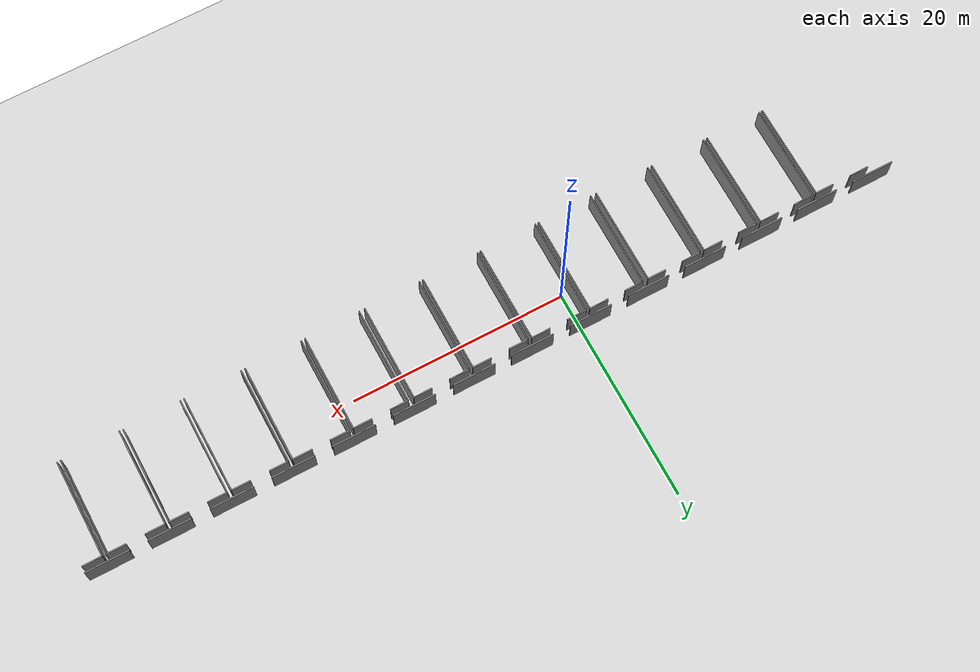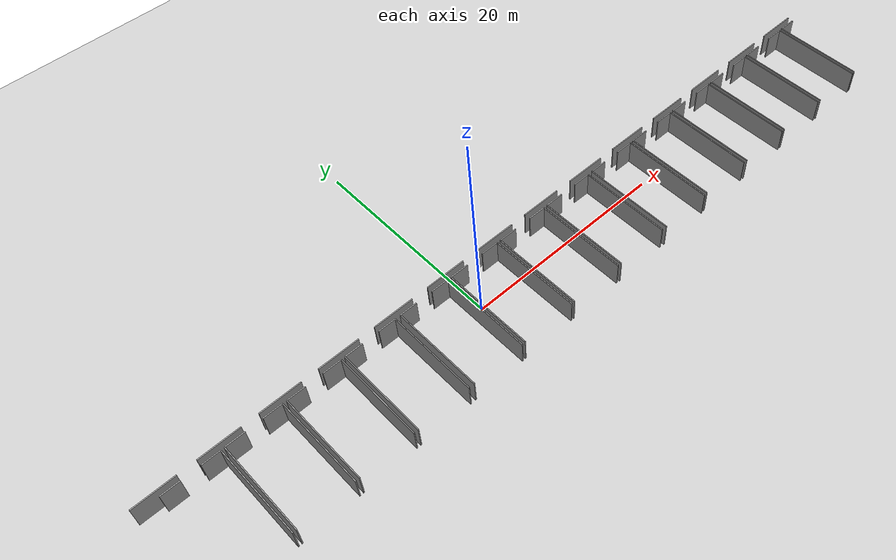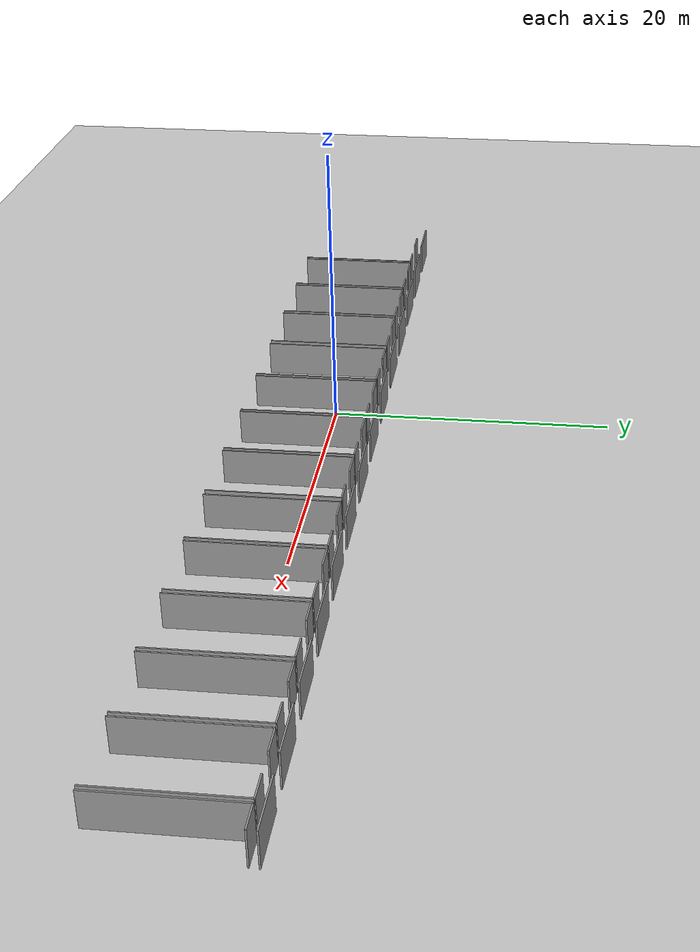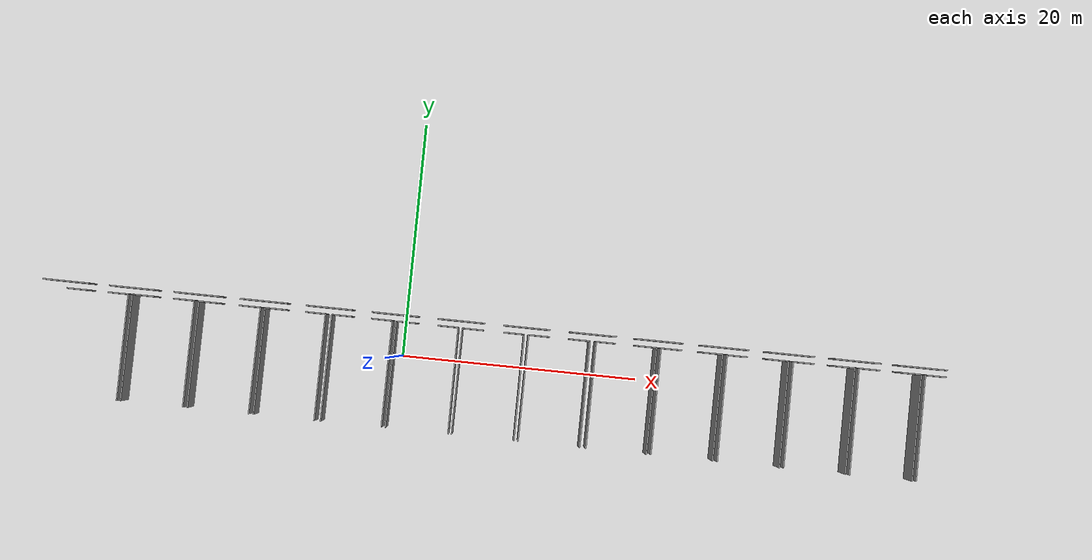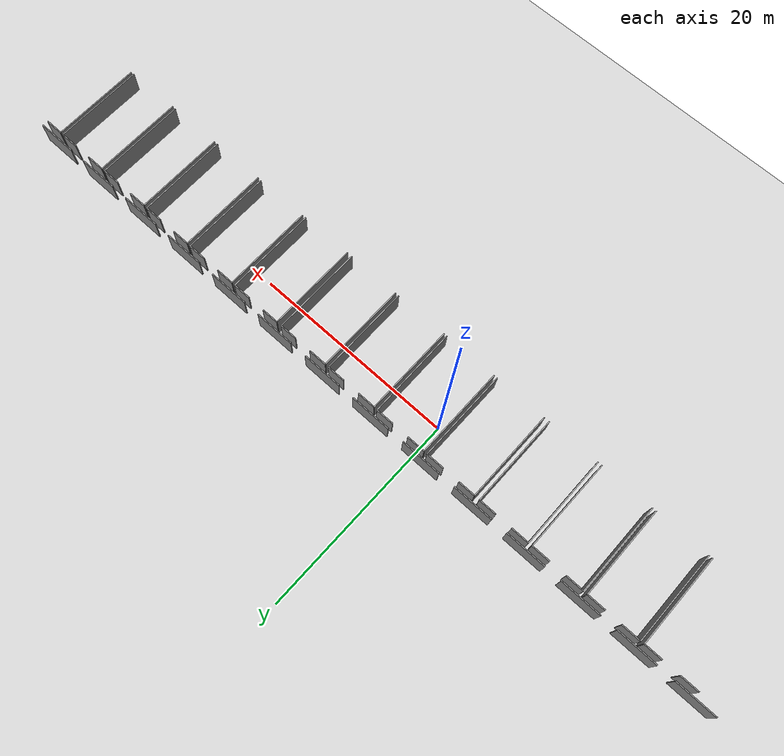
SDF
<sdf version="1.6">
 <world name="default">
  <model name="ground_plane">
   <static>1</static>
   <link name="link">
    <collision name="collision">
     <geometry><plane><normal>0 0 1</normal><size>100 100</size></plane></geometry>
     <surface><friction><ode><mu>100</mu><mu2>50</mu2></ode></friction></surface>
    </collision>
    <visual name="visual">
     <cast_shadows>0</cast_shadows>
     <geometry><plane><normal>0 0 1</normal><size>100 100</size></plane></geometry>
     <material>
      <script><uri>file://media/materials/scripts/gazebo.material</uri><name>Gazebo/Grey</name></script>
     </material>
    </visual>
   </link>
  </model>
  <model name="50015850_PLAN5">
   <static>1</static>
   <link name="Wall_6">
    <collision name="Wall_6_Collision">
     <geometry><box><size>3.97766639173 0.1 2.5</size></box></geometry>
     <pose>1.98883319586 0 1.25 0 0 0</pose>
    </collision>
    <visual name="Wall_6_Visual">
     <pose>1.98883319586 0 1.25 0 0 0</pose>
     <geometry><box><size>3.97766639173 0.1 2.5</size></box></geometry>
     <material>
      <script><uri>file://media/materials/scripts/gazebo.material</uri><name>Gazebo/Grey</name></script>
      <ambient>1 1 1 1</ambient>
     </material>
    </visual>
    <pose>132.636254045 -2.89976524332 0 0 0 3.14159265359</pose>
   </link>
   <link name="Wall_7">
    <collision name="Wall_7_Collision">
     <geometry><box><size>3.93249159317 0.1 2.5</size></box></geometry>
     <pose>1.96624579659 0 1.25 0 0 0</pose>
    </collision>
    <visual name="Wall_7_Visual">
     <pose>1.96624579659 0 1.25 0 0 0</pose>
     <geometry><box><size>3.93249159317 0.1 2.5</size></box></geometry>
     <material>
      <script><uri>file://media/materials/scripts/gazebo.material</uri><name>Gazebo/Grey</name></script>
      <ambient>1 1 1 1</ambient>
     </material>
    </visual>
    <pose>127.035340397 -2.89976524332 0 0 0 3.14159265359</pose>
   </link>
   <link name="Wall_8">
    <collision name="Wall_8_Collision">
     <geometry><box><size>3.96142376753 0.1 2.5</size></box></geometry>
     <pose>1.98071188376 0 1.25 0 0 0</pose>
    </collision>
    <visual name="Wall_8_Visual">
     <pose>1.98071188376 0 1.25 0 0 0</pose>
     <geometry><box><size>3.96142376753 0.1 2.5</size></box></geometry>
     <material>
      <script><uri>file://media/materials/scripts/gazebo.material</uri><name>Gazebo/Grey</name></script>
      <ambient>1 1 1 1</ambient>
     </material>
    </visual>
    <pose>121.448639046 -2.89976524332 0 0 0 3.14159265359</pose>
   </link>
   <link name="Wall_9">
    <collision name="Wall_9_Collision">
     <geometry><box><size>3.96446925956 0.1 2.5</size></box></geometry>
     <pose>1.98223462978 0 1.25 0 0 0</pose>
    </collision>
    <visual name="Wall_9_Visual">
     <pose>1.98223462978 0 1.25 0 0 0</pose>
     <geometry><box><size>3.96446925956 0.1 2.5</size></box></geometry>
     <material>
      <script><uri>file://media/materials/scripts/gazebo.material</uri><name>Gazebo/Grey</name></script>
      <ambient>1 1 1 1</ambient>
     </material>
    </visual>
    <pose>115.868790051 -2.89976524332 0 0 0 3.14159265359</pose>
   </link>
   <link name="Wall_10">
    <collision name="Wall_10_Collision">
     <geometry><box><size>3.97157540765 0.1 2.5</size></box></geometry>
     <pose>1.98578770383 0 1.25 0 0 0</pose>
    </collision>
    <visual name="Wall_10_Visual">
     <pose>1.98578770383 0 1.25 0 0 0</pose>
     <geometry><box><size>3.97157540765 0.1 2.5</size></box></geometry>
     <material>
      <script><uri>file://media/materials/scripts/gazebo.material</uri><name>Gazebo/Grey</name></script>
      <ambient>1 1 1 1</ambient>
     </material>
    </visual>
    <pose>110.282850073 -2.89976524332 0 0 0 3.14159265359</pose>
   </link>
   <link name="Wall_11">
    <collision name="Wall_11_Collision">
     <geometry><box><size>3.96142376753 0.1 2.5</size></box></geometry>
     <pose>1.98071188376 0 1.25 0 0 0</pose>
    </collision>
    <visual name="Wall_11_Visual">
     <pose>1.98071188376 0 1.25 0 0 0</pose>
     <geometry><box><size>3.96142376753 0.1 2.5</size></box></geometry>
     <material>
      <script><uri>file://media/materials/scripts/gazebo.material</uri><name>Gazebo/Grey</name></script>
      <ambient>1 1 1 1</ambient>
     </material>
    </visual>
    <pose>104.674576486 -2.89976524332 0 0 0 3.14159265359</pose>
   </link>
   <link name="Wall_12">
    <collision name="Wall_12_Collision">
     <geometry><box><size>3.95837827549 0.1 2.5</size></box></geometry>
     <pose>1.97918913775 0 1.25 0 0 0</pose>
    </collision>
    <visual name="Wall_12_Visual">
     <pose>1.97918913775 0 1.25 0 0 0</pose>
     <geometry><box><size>3.95837827549 0.1 2.5</size></box></geometry>
     <material>
      <script><uri>file://media/materials/scripts/gazebo.material</uri><name>Gazebo/Grey</name></script>
      <ambient>1 1 1 1</ambient>
     </material>
    </visual>
    <pose>99.0444768733 -2.89976524332 0 0 0 3.14159265359</pose>
   </link>
   <link name="Wall_13">
    <collision name="Wall_13_Collision">
     <geometry><box><size>4.01573504219 0.1 2.5</size></box></geometry>
     <pose>2.0078675211 0 1.25 0 0 0</pose>
    </collision>
    <visual name="Wall_13_Visual">
     <pose>2.0078675211 0 1.25 0 0 0</pose>
     <geometry><box><size>4.01573504219 0.1 2.5</size></box></geometry>
     <material>
      <script><uri>file://media/materials/scripts/gazebo.material</uri><name>Gazebo/Grey</name></script>
      <ambient>1 1 1 1</ambient>
     </material>
    </visual>
    <pose>93.5151322886 -2.89976524332 0 0 0 3.14159265359</pose>
   </link>
   <link name="Wall_14">
    <collision name="Wall_14_Collision">
     <geometry><box><size>3.96193134953 0.1 2.5</size></box></geometry>
     <pose>1.98096567477 0 1.25 0 0 0</pose>
    </collision>
    <visual name="Wall_14_Visual">
     <pose>1.98096567477 0 1.25 0 0 0</pose>
     <geometry><box><size>3.96193134953 0.1 2.5</size></box></geometry>
     <material>
      <script><uri>file://media/materials/scripts/gazebo.material</uri><name>Gazebo/Grey</name></script>
      <ambient>1 1 1 1</ambient>
     </material>
    </visual>
    <pose>87.8654907684 -2.89976524332 0 0 0 3.14159265359</pose>
   </link>
   <link name="Wall_15">
    <collision name="Wall_15_Collision">
     <geometry><box><size>3.96142376753 0.1 2.5</size></box></geometry>
     <pose>1.98071188376 0 1.25 0 0 0</pose>
    </collision>
    <visual name="Wall_15_Visual">
     <pose>1.98071188376 0 1.25 0 0 0</pose>
     <geometry><box><size>3.96142376753 0.1 2.5</size></box></geometry>
     <material>
      <script><uri>file://media/materials/scripts/gazebo.material</uri><name>Gazebo/Grey</name></script>
      <ambient>1 1 1 1</ambient>
     </material>
    </visual>
    <pose>82.2556944356 -2.89976524332 0 0 0 3.14159265359</pose>
   </link>
   <link name="Wall_16">
    <collision name="Wall_16_Collision">
     <geometry><box><size>3.99390901593 0.1 2.5</size></box></geometry>
     <pose>1.99695450796 0 1.25 0 0 0</pose>
    </collision>
    <visual name="Wall_16_Visual">
     <pose>1.99695450796 0 1.25 0 0 0</pose>
     <geometry><box><size>3.99390901593 0.1 2.5</size></box></geometry>
     <material>
      <script><uri>file://media/materials/scripts/gazebo.material</uri><name>Gazebo/Grey</name></script>
      <ambient>1 1 1 1</ambient>
     </material>
    </visual>
    <pose>76.6948797665 -2.89976524332 0 0 0 3.14159265359</pose>
   </link>
   <link name="Wall_17">
    <collision name="Wall_17_Collision">
     <geometry><box><size>3.9758898547 0.1 2.5</size></box></geometry>
     <pose>1.98794492735 0 1.25 0 0 0</pose>
    </collision>
    <visual name="Wall_17_Visual">
     <pose>1.98794492735 0 1.25 0 0 0</pose>
     <geometry><box><size>3.9758898547 0.1 2.5</size></box></geometry>
     <material>
      <script><uri>file://media/materials/scripts/gazebo.material</uri><name>Gazebo/Grey</name></script>
      <ambient>1 1 1 1</ambient>
     </material>
    </visual>
    <pose>71.0680794366 -2.89976524332 0 0 0 3.14159265359</pose>
   </link>
   <link name="Wall_18">
    <collision name="Wall_18_Collision">
     <geometry><box><size>3.91777171499 0.1 2.5</size></box></geometry>
     <pose>1.9588858575 0 1.25 0 0 0</pose>
    </collision>
    <visual name="Wall_18_Visual">
     <pose>1.9588858575 0 1.25 0 0 0</pose>
     <geometry><box><size>3.91777171499 0.1 2.5</size></box></geometry>
     <material>
      <script><uri>file://media/materials/scripts/gazebo.material</uri><name>Gazebo/Grey</name></script>
      <ambient>1 1 1 1</ambient>
     </material>
    </visual>
    <pose>65.4958441723 -2.89976524332 0 0 0 3.14159265359</pose>
   </link>
   <link name="Wall_19">
    <collision name="Wall_19_Collision">
     <geometry><box><size>3.92132478904 0.1 2.5</size></box></geometry>
     <pose>1.96066239452 0 1.25 0 0 0</pose>
    </collision>
    <visual name="Wall_19_Visual">
     <pose>1.96066239452 0 1.25 0 0 0</pose>
     <geometry><box><size>3.92132478904 0.1 2.5</size></box></geometry>
     <material>
      <script><uri>file://media/materials/scripts/gazebo.material</uri><name>Gazebo/Grey</name></script>
      <ambient>1 1 1 1</ambient>
     </material>
    </visual>
    <pose>59.8708203794 -2.89976524332 0 0 0 3.14159265359</pose>
   </link>
   <link name="Wall_83">
    <collision name="Wall_83_Collision">
     <geometry><box><size>1.78135905082 0.1 2.5</size></box></geometry>
     <pose>0.890679525411 0 1.25 0 0 0</pose>
    </collision>
    <visual name="Wall_83_Visual">
     <pose>0.890679525411 0 1.25 0 0 0</pose>
     <geometry><box><size>1.78135905082 0.1 2.5</size></box></geometry>
     <material>
      <script><uri>file://media/materials/scripts/gazebo.material</uri><name>Gazebo/Grey</name></script>
      <ambient>1 1 1 1</ambient>
     </material>
    </visual>
    <pose>58.0493623501 -3.47909396612 0 0 0 0.0</pose>
   </link>
   <link name="Wall_84">
    <collision name="Wall_84_Collision">
     <geometry><box><size>1.73364634224 0.1 2.5</size></box></geometry>
     <pose>0.866823171119 0 1.25 0 0 0</pose>
    </collision>
    <visual name="Wall_84_Visual">
     <pose>0.866823171119 0 1.25 0 0 0</pose>
     <geometry><box><size>1.73364634224 0.1 2.5</size></box></geometry>
     <material>
      <script><uri>file://media/materials/scripts/gazebo.material</uri><name>Gazebo/Grey</name></script>
      <ambient>1 1 1 1</ambient>
     </material>
    </visual>
    <pose>61.5643677432 -3.47909396612 0 0 0 0.0</pose>
   </link>
   <link name="Wall_85">
    <collision name="Wall_85_Collision">
     <geometry><box><size>9.00286116204 0.1 2.5</size></box></geometry>
     <pose>4.50143058102 0 1.25 0 0 0</pose>
    </collision>
    <visual name="Wall_85_Visual">
     <pose>4.50143058102 0 1.25 0 0 0</pose>
     <geometry><box><size>9.00286116204 0.1 2.5</size></box></geometry>
     <material>
      <script><uri>file://media/materials/scripts/gazebo.material</uri><name>Gazebo/Grey</name></script>
      <ambient>1 1 1 1</ambient>
     </material>
    </visual>
    <pose>63.2980140854 -3.47909396612 0 0 0 -1.56964053496</pose>
   </link>
   <link name="Wall_86">
    <collision name="Wall_86_Collision">
     <geometry><box><size>9.00922530296 0.1 2.5</size></box></geometry>
     <pose>4.50461265148 0 1.25 0 0 0</pose>
    </collision>
    <visual name="Wall_86_Visual">
     <pose>4.50461265148 0 1.25 0 0 0</pose>
     <geometry><box><size>9.00922530296 0.1 2.5</size></box></geometry>
     <material>
      <script><uri>file://media/materials/scripts/gazebo.material</uri><name>Gazebo/Grey</name></script>
      <ambient>1 1 1 1</ambient>
     </material>
    </visual>
    <pose>63.6391091936 -12.4641837447 0 0 0 1.57079632679</pose>
   </link>
   <link name="Wall_87">
    <collision name="Wall_87_Collision">
     <geometry><box><size>1.84226889157 0.1 2.5</size></box></geometry>
     <pose>0.921134445784 0 1.25 0 0 0</pose>
    </collision>
    <visual name="Wall_87_Visual">
     <pose>0.921134445784 0 1.25 0 0 0</pose>
     <geometry><box><size>1.84226889157 0.1 2.5</size></box></geometry>
     <material>
      <script><uri>file://media/materials/scripts/gazebo.material</uri><name>Gazebo/Grey</name></script>
      <ambient>1 1 1 1</ambient>
     </material>
    </visual>
    <pose>63.6391091936 -3.45495844172 0 0 0 0.0</pose>
   </link>
   <link name="Wall_88">
    <collision name="Wall_88_Collision">
     <geometry><box><size>1.81714358226 0.1 2.5</size></box></geometry>
     <pose>0.90857179113 0 1.25 0 0 0</pose>
    </collision>
    <visual name="Wall_88_Visual">
     <pose>0.90857179113 0 1.25 0 0 0</pose>
     <geometry><box><size>1.81714358226 0.1 2.5</size></box></geometry>
     <material>
      <script><uri>file://media/materials/scripts/gazebo.material</uri><name>Gazebo/Grey</name></script>
      <ambient>1 1 1 1</ambient>
     </material>
    </visual>
    <pose>67.0838144788 -3.45495844172 0 0 0 0.0</pose>
   </link>
   <link name="Wall_89">
    <collision name="Wall_89_Collision">
     <geometry><box><size>9.00923388572 0.1 2.5</size></box></geometry>
     <pose>4.50461694286 0 1.25 0 0 0</pose>
    </collision>
    <visual name="Wall_89_Visual">
     <pose>4.50461694286 0 1.25 0 0 0</pose>
     <geometry><box><size>9.00923388572 0.1 2.5</size></box></geometry>
     <material>
      <script><uri>file://media/materials/scripts/gazebo.material</uri><name>Gazebo/Grey</name></script>
      <ambient>1 1 1 1</ambient>
     </material>
    </visual>
    <pose>68.900958061 -3.45495844172 0 0 0 -1.56941599155</pose>
   </link>
   <link name="Wall_90">
    <collision name="Wall_90_Collision">
     <geometry><box><size>8.99701795571 0.1 2.5</size></box></geometry>
     <pose>4.49850897786 0 1.25 0 0 0</pose>
    </collision>
    <visual name="Wall_90_Visual">
     <pose>4.49850897786 0 1.25 0 0 0</pose>
     <geometry><box><size>8.99701795571 0.1 2.5</size></box></geometry>
     <material>
      <script><uri>file://media/materials/scripts/gazebo.material</uri><name>Gazebo/Grey</name></script>
      <ambient>1 1 1 1</ambient>
     </material>
    </visual>
    <pose>69.2793604467 -12.4641837447 0 0 0 1.57079632679</pose>
   </link>
   <link name="Wall_91">
    <collision name="Wall_91_Collision">
     <geometry><box><size>1.76816191866 0.1 2.5</size></box></geometry>
     <pose>0.88408095933 0 1.25 0 0 0</pose>
    </collision>
    <visual name="Wall_91_Visual">
     <pose>0.88408095933 0 1.25 0 0 0</pose>
     <geometry><box><size>1.76816191866 0.1 2.5</size></box></geometry>
     <material>
      <script><uri>file://media/materials/scripts/gazebo.material</uri><name>Gazebo/Grey</name></script>
      <ambient>1 1 1 1</ambient>
     </material>
    </visual>
    <pose>69.2793604467 -3.46716578897 0 0 0 0.0</pose>
   </link>
   <link name="Wall_92">
    <collision name="Wall_92_Collision">
     <geometry><box><size>1.81688979126 0.1 2.5</size></box></geometry>
     <pose>0.908444895628 0 1.25 0 0 0</pose>
    </collision>
    <visual name="Wall_92_Visual">
     <pose>0.908444895628 0 1.25 0 0 0</pose>
     <geometry><box><size>1.81688979126 0.1 2.5</size></box></geometry>
     <material>
      <script><uri>file://media/materials/scripts/gazebo.material</uri><name>Gazebo/Grey</name></script>
      <ambient>1 1 1 1</ambient>
     </material>
    </visual>
    <pose>72.6989404226 -3.46716578897 0 0 0 0.0</pose>
   </link>
   <link name="Wall_93">
    <collision name="Wall_93_Collision">
     <geometry><box><size>8.99709742412 0.1 2.5</size></box></geometry>
     <pose>4.49854871206 0 1.25 0 0 0</pose>
    </collision>
    <visual name="Wall_93_Visual">
     <pose>4.49854871206 0 1.25 0 0 0</pose>
     <geometry><box><size>8.99709742412 0.1 2.5</size></box></geometry>
     <material>
      <script><uri>file://media/materials/scripts/gazebo.material</uri><name>Gazebo/Grey</name></script>
      <ambient>1 1 1 1</ambient>
     </material>
    </visual>
    <pose>74.5158302138 -3.46716578897 0 0 0 -1.57499934573</pose>
   </link>
   <link name="Wall_94">
    <collision name="Wall_94_Collision">
     <geometry><box><size>9.01171245479 0.1 2.5</size></box></geometry>
     <pose>4.5058562274 0 1.25 0 0 0</pose>
    </collision>
    <visual name="Wall_94_Visual">
     <pose>4.5058562274 0 1.25 0 0 0</pose>
     <geometry><box><size>9.01171245479 0.1 2.5</size></box></geometry>
     <material>
      <script><uri>file://media/materials/scripts/gazebo.material</uri><name>Gazebo/Grey</name></script>
      <ambient>1 1 1 1</ambient>
     </material>
    </visual>
    <pose>74.8843347503 -12.4659602817 0 0 0 1.57079632679</pose>
   </link>
   <link name="Wall_95">
    <collision name="Wall_95_Collision">
     <geometry><box><size>1.76384747161 0.1 2.5</size></box></geometry>
     <pose>0.881923735804 0 1.25 0 0 0</pose>
    </collision>
    <visual name="Wall_95_Visual">
     <pose>0.881923735804 0 1.25 0 0 0</pose>
     <geometry><box><size>1.76384747161 0.1 2.5</size></box></geometry>
     <material>
      <script><uri>file://media/materials/scripts/gazebo.material</uri><name>Gazebo/Grey</name></script>
      <ambient>1 1 1 1</ambient>
     </material>
    </visual>
    <pose>74.8843347503 -3.45424782691 0 0 0 0.0</pose>
   </link>
   <link name="Wall_96">
    <collision name="Wall_96_Collision">
     <geometry><box><size>1.72679398515 0.1 2.5</size></box></geometry>
     <pose>0.863396992577 0 1.25 0 0 0</pose>
    </collision>
    <visual name="Wall_96_Visual">
     <pose>0.863396992577 0 1.25 0 0 0</pose>
     <geometry><box><size>1.72679398515 0.1 2.5</size></box></geometry>
     <material>
      <script><uri>file://media/materials/scripts/gazebo.material</uri><name>Gazebo/Grey</name></script>
      <ambient>1 1 1 1</ambient>
     </material>
    </visual>
    <pose>78.2942706681 -3.45424782691 0 0 0 0.0</pose>
   </link>
   <link name="Wall_97">
    <collision name="Wall_97_Collision">
     <geometry><box><size>9.01171245479 0.1 2.5</size></box></geometry>
     <pose>4.5058562274 0 1.25 0 0 0</pose>
    </collision>
    <visual name="Wall_97_Visual">
     <pose>4.5058562274 0 1.25 0 0 0</pose>
     <geometry><box><size>9.01171245479 0.1 2.5</size></box></geometry>
     <material>
      <script><uri>file://media/materials/scripts/gazebo.material</uri><name>Gazebo/Grey</name></script>
      <ambient>1 1 1 1</ambient>
     </material>
    </visual>
    <pose>80.0210646533 -3.45424782691 0 0 0 -1.57079632679</pose>
   </link>
   <link name="Wall_98">
    <collision name="Wall_98_Collision">
     <geometry><box><size>9.01171245479 0.1 2.5</size></box></geometry>
     <pose>4.5058562274 0 1.25 0 0 0</pose>
    </collision>
    <visual name="Wall_98_Visual">
     <pose>4.5058562274 0 1.25 0 0 0</pose>
     <geometry><box><size>9.01171245479 0.1 2.5</size></box></geometry>
     <material>
      <script><uri>file://media/materials/scripts/gazebo.material</uri><name>Gazebo/Grey</name></script>
      <ambient>1 1 1 1</ambient>
     </material>
    </visual>
    <pose>80.5578326248 -12.4659602817 0 0 0 1.57079632679</pose>
   </link>
   <link name="Wall_99">
    <collision name="Wall_99_Collision">
     <geometry><box><size>1.69989213882 0.1 2.5</size></box></geometry>
     <pose>0.849946069412 0 1.25 0 0 0</pose>
    </collision>
    <visual name="Wall_99_Visual">
     <pose>0.849946069412 0 1.25 0 0 0</pose>
     <geometry><box><size>1.69989213882 0.1 2.5</size></box></geometry>
     <material>
      <script><uri>file://media/materials/scripts/gazebo.material</uri><name>Gazebo/Grey</name></script>
      <ambient>1 1 1 1</ambient>
     </material>
    </visual>
    <pose>80.5578326248 -3.45424782691 0 0 0 0.0</pose>
   </link>
   <link name="Wall_100">
    <collision name="Wall_100_Collision">
     <geometry><box><size>1.77755218578 0.1 2.5</size></box></geometry>
     <pose>0.888776092888 0 1.25 0 0 0</pose>
    </collision>
    <visual name="Wall_100_Visual">
     <pose>0.888776092888 0 1.25 0 0 0</pose>
     <geometry><box><size>1.77755218578 0.1 2.5</size></box></geometry>
     <material>
      <script><uri>file://media/materials/scripts/gazebo.material</uri><name>Gazebo/Grey</name></script>
      <ambient>1 1 1 1</ambient>
     </material>
    </visual>
    <pose>83.914472432 -3.45424782691 0 0 0 0.0</pose>
   </link>
   <link name="Wall_101">
    <collision name="Wall_101_Collision">
     <geometry><box><size>9.01171281216 0.1 2.5</size></box></geometry>
     <pose>4.50585640608 0 1.25 0 0 0</pose>
    </collision>
    <visual name="Wall_101_Visual">
     <pose>4.50585640608 0 1.25 0 0 0</pose>
     <geometry><box><size>9.01171281216 0.1 2.5</size></box></geometry>
     <material>
      <script><uri>file://media/materials/scripts/gazebo.material</uri><name>Gazebo/Grey</name></script>
      <ambient>1 1 1 1</ambient>
     </material>
    </visual>
    <pose>85.6920246177 -3.45424782691 0 0 0 -1.5705147033</pose>
   </link>
   <link name="Wall_102">
    <collision name="Wall_102_Collision">
     <geometry><box><size>8.98153670452 0.1 2.5</size></box></geometry>
     <pose>4.49076835226 0 1.25 0 0 0</pose>
    </collision>
    <visual name="Wall_102_Visual">
     <pose>4.49076835226 0 1.25 0 0 0</pose>
     <geometry><box><size>8.98153670452 0.1 2.5</size></box></geometry>
     <material>
      <script><uri>file://media/materials/scripts/gazebo.material</uri><name>Gazebo/Grey</name></script>
      <ambient>1 1 1 1</ambient>
     </material>
    </visual>
    <pose>86.0321045619 -12.4487024935 0 0 0 1.57079632679</pose>
   </link>
   <link name="Wall_103">
    <collision name="Wall_103_Collision">
     <geometry><box><size>1.80749952414 0.1 2.5</size></box></geometry>
     <pose>0.903749762071 0 1.25 0 0 0</pose>
    </collision>
    <visual name="Wall_103_Visual">
     <pose>0.903749762071 0 1.25 0 0 0</pose>
     <geometry><box><size>1.80749952414 0.1 2.5</size></box></geometry>
     <material>
      <script><uri>file://media/materials/scripts/gazebo.material</uri><name>Gazebo/Grey</name></script>
      <ambient>1 1 1 1</ambient>
     </material>
    </visual>
    <pose>86.0321045619 -3.46716578897 0 0 0 0.0</pose>
   </link>
   <link name="Wall_104">
    <collision name="Wall_104_Collision">
     <geometry><box><size>1.7554723685 0.1 2.5</size></box></geometry>
     <pose>0.877736184252 0 1.25 0 0 0</pose>
    </collision>
    <visual name="Wall_104_Visual">
     <pose>0.877736184252 0 1.25 0 0 0</pose>
     <geometry><box><size>1.7554723685 0.1 2.5</size></box></geometry>
     <material>
      <script><uri>file://media/materials/scripts/gazebo.material</uri><name>Gazebo/Grey</name></script>
      <ambient>1 1 1 1</ambient>
     </material>
    </visual>
    <pose>89.5189391536 -3.46716578897 0 0 0 0.0</pose>
   </link>
   <link name="Wall_105">
    <collision name="Wall_105_Collision">
     <geometry><box><size>8.98168592504 0.1 2.5</size></box></geometry>
     <pose>4.49084296252 0 1.25 0 0 0</pose>
    </collision>
    <visual name="Wall_105_Visual">
     <pose>4.49084296252 0 1.25 0 0 0</pose>
     <geometry><box><size>8.98168592504 0.1 2.5</size></box></geometry>
     <material>
      <script><uri>file://media/materials/scripts/gazebo.material</uri><name>Gazebo/Grey</name></script>
      <ambient>1 1 1 1</ambient>
     </material>
    </visual>
    <pose>91.2744115221 -3.46716578897 0 0 0 -1.56503196899</pose>
   </link>
   <link name="Wall_106">
    <collision name="Wall_106_Collision">
     <geometry><box><size>8.96141107798 0.1 2.5</size></box></geometry>
     <pose>4.48070553899 0 1.25 0 0 0</pose>
    </collision>
    <visual name="Wall_106_Visual">
     <pose>4.48070553899 0 1.25 0 0 0</pose>
     <geometry><box><size>8.96141107798 0.1 2.5</size></box></geometry>
     <material>
      <script><uri>file://media/materials/scripts/gazebo.material</uri><name>Gazebo/Grey</name></script>
      <ambient>1 1 1 1</ambient>
     </material>
    </visual>
    <pose>91.6294651355 -12.4514941945 0 0 0 1.57079632679</pose>
   </link>
   <link name="Wall_107">
    <collision name="Wall_107_Collision">
     <geometry><box><size>1.79785546602 0.1 2.5</size></box></geometry>
     <pose>0.898927733012 0 1.25 0 0 0</pose>
    </collision>
    <visual name="Wall_107_Visual">
     <pose>0.898927733012 0 1.25 0 0 0</pose>
     <geometry><box><size>1.79785546602 0.1 2.5</size></box></geometry>
     <material>
      <script><uri>file://media/materials/scripts/gazebo.material</uri><name>Gazebo/Grey</name></script>
      <ambient>1 1 1 1</ambient>
     </material>
    </visual>
    <pose>91.6294651355 -3.49008311655 0 0 0 0.0</pose>
   </link>
   <link name="Wall_108">
    <collision name="Wall_108_Collision">
     <geometry><box><size>1.74126007233 0.1 2.5</size></box></geometry>
     <pose>0.870630036165 0 1.25 0 0 0</pose>
    </collision>
    <visual name="Wall_108_Visual">
     <pose>0.870630036165 0 1.25 0 0 0</pose>
     <geometry><box><size>1.74126007233 0.1 2.5</size></box></geometry>
     <material>
      <script><uri>file://media/materials/scripts/gazebo.material</uri><name>Gazebo/Grey</name></script>
      <ambient>1 1 1 1</ambient>
     </material>
    </visual>
    <pose>95.1208679652 -3.49008311655 0 0 0 0.0</pose>
   </link>
   <link name="Wall_109">
    <collision name="Wall_109_Collision">
     <geometry><box><size>8.96143350645 0.1 2.5</size></box></geometry>
     <pose>4.48071675322 0 1.25 0 0 0</pose>
    </collision>
    <visual name="Wall_109_Visual">
     <pose>4.48071675322 0 1.25 0 0 0</pose>
     <geometry><box><size>8.96143350645 0.1 2.5</size></box></geometry>
     <material>
      <script><uri>file://media/materials/scripts/gazebo.material</uri><name>Gazebo/Grey</name></script>
      <ambient>1 1 1 1</ambient>
     </material>
    </visual>
    <pose>96.8621280376 -3.49008311655 0 0 0 -1.56855901666</pose>
   </link>
   <link name="Wall_110">
    <collision name="Wall_110_Collision">
     <geometry><box><size>8.98602880528 0.1 2.5</size></box></geometry>
     <pose>4.49301440264 0 1.25 0 0 0</pose>
    </collision>
    <visual name="Wall_110_Visual">
     <pose>4.49301440264 0 1.25 0 0 0</pose>
     <geometry><box><size>8.98602880528 0.1 2.5</size></box></geometry>
     <material>
      <script><uri>file://media/materials/scripts/gazebo.material</uri><name>Gazebo/Grey</name></script>
      <ambient>1 1 1 1</ambient>
     </material>
    </visual>
    <pose>97.2346932301 -12.4761119218 0 0 0 1.57079632679</pose>
   </link>
   <link name="Wall_111">
    <collision name="Wall_111_Collision">
     <geometry><box><size>1.82120423831 0.1 2.5</size></box></geometry>
     <pose>0.910602119155 0 1.25 0 0 0</pose>
    </collision>
    <visual name="Wall_111_Visual">
     <pose>0.910602119155 0 1.25 0 0 0</pose>
     <geometry><box><size>1.82120423831 0.1 2.5</size></box></geometry>
     <material>
      <script><uri>file://media/materials/scripts/gazebo.material</uri><name>Gazebo/Grey</name></script>
      <ambient>1 1 1 1</ambient>
     </material>
    </visual>
    <pose>97.2346932301 -3.49008311655 0 0 0 0.0</pose>
   </link>
   <link name="Wall_112">
    <collision name="Wall_112_Collision">
     <geometry><box><size>1.70065351183 0.1 2.5</size></box></geometry>
     <pose>0.850326755917 0 1.25 0 0 0</pose>
    </collision>
    <visual name="Wall_112_Visual">
     <pose>0.850326755917 0 1.25 0 0 0</pose>
     <geometry><box><size>1.70065351183 0.1 2.5</size></box></geometry>
     <material>
      <script><uri>file://media/materials/scripts/gazebo.material</uri><name>Gazebo/Grey</name></script>
      <ambient>1 1 1 1</ambient>
     </material>
    </visual>
    <pose>100.734724954 -3.49008311655 0 0 0 0.0</pose>
   </link>
   <link name="Wall_113">
    <collision name="Wall_113_Collision">
     <geometry><box><size>8.98602880528 0.1 2.5</size></box></geometry>
     <pose>4.49301440264 0 1.25 0 0 0</pose>
    </collision>
    <visual name="Wall_113_Visual">
     <pose>4.49301440264 0 1.25 0 0 0</pose>
     <geometry><box><size>8.98602880528 0.1 2.5</size></box></geometry>
     <material>
      <script><uri>file://media/materials/scripts/gazebo.material</uri><name>Gazebo/Grey</name></script>
      <ambient>1 1 1 1</ambient>
     </material>
    </visual>
    <pose>102.435378466 -3.49008311655 0 0 0 -1.57079632679</pose>
   </link>
   <link name="Wall_114">
    <collision name="Wall_114_Collision">
     <geometry><box><size>9.00818475985 0.1 2.5</size></box></geometry>
     <pose>4.50409237993 0 1.25 0 0 0</pose>
    </collision>
    <visual name="Wall_114_Visual">
     <pose>4.50409237993 0 1.25 0 0 0</pose>
     <geometry><box><size>9.00818475985 0.1 2.5</size></box></geometry>
     <material>
      <script><uri>file://media/materials/scripts/gazebo.material</uri><name>Gazebo/Grey</name></script>
      <ambient>1 1 1 1</ambient>
     </material>
    </visual>
    <pose>102.961994797 -12.487278726 0 0 0 1.57079632679</pose>
   </link>
   <link name="Wall_115">
    <collision name="Wall_115_Collision">
     <geometry><box><size>1.66791447243 0.1 2.5</size></box></geometry>
     <pose>0.833957236216 0 1.25 0 0 0</pose>
    </collision>
    <visual name="Wall_115_Visual">
     <pose>0.833957236216 0 1.25 0 0 0</pose>
     <geometry><box><size>1.66791447243 0.1 2.5</size></box></geometry>
     <material>
      <script><uri>file://media/materials/scripts/gazebo.material</uri><name>Gazebo/Grey</name></script>
      <ambient>1 1 1 1</ambient>
     </material>
    </visual>
    <pose>102.961994797 -3.47909396612 0 0 0 0.0</pose>
   </link>
   <link name="Wall_116">
    <collision name="Wall_116_Collision">
     <geometry><box><size>1.73643804327 0.1 2.5</size></box></geometry>
     <pose>0.868219021636 0 1.25 0 0 0</pose>
    </collision>
    <visual name="Wall_116_Visual">
     <pose>0.868219021636 0 1.25 0 0 0</pose>
     <geometry><box><size>1.73643804327 0.1 2.5</size></box></geometry>
     <material>
      <script><uri>file://media/materials/scripts/gazebo.material</uri><name>Gazebo/Grey</name></script>
      <ambient>1 1 1 1</ambient>
     </material>
    </visual>
    <pose>106.339445467 -3.47909396612 0 0 0 0.0</pose>
   </link>
   <link name="Wall_117">
    <collision name="Wall_117_Collision">
     <geometry><box><size>9.00819265719 0.1 2.5</size></box></geometry>
     <pose>4.50409632859 0 1.25 0 0 0</pose>
    </collision>
    <visual name="Wall_117_Visual">
     <pose>4.50409632859 0 1.25 0 0 0</pose>
     <geometry><box><size>9.00819265719 0.1 2.5</size></box></geometry>
     <material>
      <script><uri>file://media/materials/scripts/gazebo.material</uri><name>Gazebo/Grey</name></script>
      <ambient>1 1 1 1</ambient>
     </material>
    </visual>
    <pose>108.07588351 -3.47909396612 0 0 0 -1.57212047483</pose>
   </link>
   <link name="Wall_118">
    <collision name="Wall_118_Collision">
     <geometry><box><size>8.97199416281 0.1 2.5</size></box></geometry>
     <pose>4.4859970814 0 1.25 0 0 0</pose>
    </collision>
    <visual name="Wall_118_Visual">
     <pose>4.4859970814 0 1.25 0 0 0</pose>
     <geometry><box><size>8.97199416281 0.1 2.5</size></box></geometry>
     <material>
      <script><uri>file://media/materials/scripts/gazebo.material</uri><name>Gazebo/Grey</name></script>
      <ambient>1 1 1 1</ambient>
     </material>
    </visual>
    <pose>108.438550853 -12.4487024935 0 0 0 1.57079632679</pose>
   </link>
   <link name="Wall_119">
    <collision name="Wall_119_Collision">
     <geometry><box><size>1.77450669374 0.1 2.5</size></box></geometry>
     <pose>0.887253346869 0 1.25 0 0 0</pose>
    </collision>
    <visual name="Wall_119_Visual">
     <pose>0.887253346869 0 1.25 0 0 0</pose>
     <geometry><box><size>1.77450669374 0.1 2.5</size></box></geometry>
     <material>
      <script><uri>file://media/materials/scripts/gazebo.material</uri><name>Gazebo/Grey</name></script>
      <ambient>1 1 1 1</ambient>
     </material>
    </visual>
    <pose>108.438550853 -3.47670833069 0 0 0 0.0</pose>
   </link>
   <link name="Wall_120">
    <collision name="Wall_120_Collision">
     <geometry><box><size>1.79912442104 0.1 2.5</size></box></geometry>
     <pose>0.89956221052 0 1.25 0 0 0</pose>
    </collision>
    <visual name="Wall_120_Visual">
     <pose>0.89956221052 0 1.25 0 0 0</pose>
     <geometry><box><size>1.79912442104 0.1 2.5</size></box></geometry>
     <material>
      <script><uri>file://media/materials/scripts/gazebo.material</uri><name>Gazebo/Grey</name></script>
      <ambient>1 1 1 1</ambient>
     </material>
    </visual>
    <pose>111.871835543 -3.47670833069 0 0 0 0.0</pose>
   </link>
   <link name="Wall_121">
    <collision name="Wall_121_Collision">
     <geometry><box><size>8.97201076062 0.1 2.5</size></box></geometry>
     <pose>4.48600538031 0 1.25 0 0 0</pose>
    </collision>
    <visual name="Wall_121_Visual">
     <pose>4.48600538031 0 1.25 0 0 0</pose>
     <geometry><box><size>8.97201076062 0.1 2.5</size></box></geometry>
     <material>
      <script><uri>file://media/materials/scripts/gazebo.material</uri><name>Gazebo/Grey</name></script>
      <ambient>1 1 1 1</ambient>
     </material>
    </visual>
    <pose>113.670959964 -3.47670833069 0 0 0 -1.57271984197</pose>
   </link>
   <link name="Wall_122">
    <collision name="Wall_122_Collision">
     <geometry><box><size>8.97757756488 0.1 2.5</size></box></geometry>
     <pose>4.48878878244 0 1.25 0 0 0</pose>
    </collision>
    <visual name="Wall_122_Visual">
     <pose>4.48878878244 0 1.25 0 0 0</pose>
     <geometry><box><size>8.97757756488 0.1 2.5</size></box></geometry>
     <material>
      <script><uri>file://media/materials/scripts/gazebo.material</uri><name>Gazebo/Grey</name></script>
      <ambient>1 1 1 1</ambient>
     </material>
    </visual>
    <pose>114.037434173 -12.4651989087 0 0 0 1.57079632679</pose>
   </link>
   <link name="Wall_123">
    <collision name="Wall_123_Collision">
     <geometry><box><size>1.75217308546 0.1 2.5</size></box></geometry>
     <pose>0.876086542732 0 1.25 0 0 0</pose>
    </collision>
    <visual name="Wall_123_Visual">
     <pose>0.876086542732 0 1.25 0 0 0</pose>
     <geometry><box><size>1.75217308546 0.1 2.5</size></box></geometry>
     <material>
      <script><uri>file://media/materials/scripts/gazebo.material</uri><name>Gazebo/Grey</name></script>
      <ambient>1 1 1 1</ambient>
     </material>
    </visual>
    <pose>114.037434173 -3.48762134382 0 0 0 0.0</pose>
   </link>
   <link name="Wall_124">
    <collision name="Wall_124_Collision">
     <geometry><box><size>1.75217308546 0.1 2.5</size></box></geometry>
     <pose>0.876086542732 0 1.25 0 0 0</pose>
    </collision>
    <visual name="Wall_124_Visual">
     <pose>0.876086542732 0 1.25 0 0 0</pose>
     <geometry><box><size>1.75217308546 0.1 2.5</size></box></geometry>
     <material>
      <script><uri>file://media/materials/scripts/gazebo.material</uri><name>Gazebo/Grey</name></script>
      <ambient>1 1 1 1</ambient>
     </material>
    </visual>
    <pose>117.491783516 -3.48762134382 0 0 0 0.0</pose>
   </link>
   <link name="Wall_125">
    <collision name="Wall_125_Collision">
     <geometry><box><size>8.97763912569 0.1 2.5</size></box></geometry>
     <pose>4.48881956285 0 1.25 0 0 0</pose>
    </collision>
    <visual name="Wall_125_Visual">
     <pose>4.48881956285 0 1.25 0 0 0</pose>
     <geometry><box><size>8.97763912569 0.1 2.5</size></box></geometry>
     <material>
      <script><uri>file://media/materials/scripts/gazebo.material</uri><name>Gazebo/Grey</name></script>
      <ambient>1 1 1 1</ambient>
     </material>
    </visual>
    <pose>119.243956602 -3.48762134382 0 0 0 -1.56709304836</pose>
   </link>
   <link name="Wall_126">
    <collision name="Wall_126_Collision">
     <geometry><box><size>8.95257915107 0.1 2.5</size></box></geometry>
     <pose>4.47628957553 0 1.25 0 0 0</pose>
    </collision>
    <visual name="Wall_126_Visual">
     <pose>4.47628957553 0 1.25 0 0 0</pose>
     <geometry><box><size>8.95257915107 0.1 2.5</size></box></geometry>
     <material>
      <script><uri>file://media/materials/scripts/gazebo.material</uri><name>Gazebo/Grey</name></script>
      <ambient>1 1 1 1</ambient>
     </material>
    </visual>
    <pose>119.627688598 -12.4454032105 0 0 0 1.57079632679</pose>
   </link>
   <link name="Wall_127">
    <collision name="Wall_127_Collision">
     <geometry><box><size>1.78897278091 0.1 2.5</size></box></geometry>
     <pose>0.894486390457 0 1.25 0 0 0</pose>
    </collision>
    <visual name="Wall_127_Visual">
     <pose>0.894486390457 0 1.25 0 0 0</pose>
     <geometry><box><size>1.78897278091 0.1 2.5</size></box></geometry>
     <material>
      <script><uri>file://media/materials/scripts/gazebo.material</uri><name>Gazebo/Grey</name></script>
      <ambient>1 1 1 1</ambient>
     </material>
    </visual>
    <pose>119.627688598 -3.49282405939 0 0 0 0.0</pose>
   </link>
   <link name="Wall_128">
    <collision name="Wall_128_Collision">
     <geometry><box><size>1.7554723685 0.1 2.5</size></box></geometry>
     <pose>0.877736184252 0 1.25 0 0 0</pose>
    </collision>
    <visual name="Wall_128_Visual">
     <pose>0.877736184252 0 1.25 0 0 0</pose>
     <geometry><box><size>1.7554723685 0.1 2.5</size></box></geometry>
     <material>
      <script><uri>file://media/materials/scripts/gazebo.material</uri><name>Gazebo/Grey</name></script>
      <ambient>1 1 1 1</ambient>
     </material>
    </visual>
    <pose>123.084829643 -3.49282405939 0 0 0 0.0</pose>
   </link>
   <link name="Wall_129">
    <collision name="Wall_129_Collision">
     <geometry><box><size>8.95257996046 0.1 2.5</size></box></geometry>
     <pose>4.47628998023 0 1.25 0 0 0</pose>
    </collision>
    <visual name="Wall_129_Visual">
     <pose>4.47628998023 0 1.25 0 0 0</pose>
     <geometry><box><size>8.95257996046 0.1 2.5</size></box></geometry>
     <material>
      <script><uri>file://media/materials/scripts/gazebo.material</uri><name>Gazebo/Grey</name></script>
      <ambient>1 1 1 1</ambient>
     </material>
    </visual>
    <pose>124.840302011 -3.49282405939 0 0 0 -1.57037110131</pose>
   </link>
   <link name="Wall_130">
    <collision name="Wall_130_Collision">
     <geometry><box><size>8.98508977857 0.1 2.5</size></box></geometry>
     <pose>4.49254488928 0 1.25 0 0 0</pose>
    </collision>
    <visual name="Wall_130_Visual">
     <pose>4.49254488928 0 1.25 0 0 0</pose>
     <geometry><box><size>8.98508977857 0.1 2.5</size></box></geometry>
     <material>
      <script><uri>file://media/materials/scripts/gazebo.material</uri><name>Gazebo/Grey</name></script>
      <ambient>1 1 1 1</ambient>
     </material>
    </visual>
    <pose>125.189264641 -12.4641837447 0 0 0 1.57079632679</pose>
   </link>
   <link name="Wall_131">
    <collision name="Wall_131_Collision">
     <geometry><box><size>1.8125753442 0.1 2.5</size></box></geometry>
     <pose>0.906287672102 0 1.25 0 0 0</pose>
    </collision>
    <visual name="Wall_131_Visual">
     <pose>0.906287672102 0 1.25 0 0 0</pose>
     <geometry><box><size>1.8125753442 0.1 2.5</size></box></geometry>
     <material>
      <script><uri>file://media/materials/scripts/gazebo.material</uri><name>Gazebo/Grey</name></script>
      <ambient>1 1 1 1</ambient>
     </material>
    </visual>
    <pose>125.189264641 -3.47909396612 0 0 0 0.0</pose>
   </link>
   <link name="Wall_132">
    <collision name="Wall_132_Collision">
     <geometry><box><size>1.79379480997 0.1 2.5</size></box></geometry>
     <pose>0.896897404987 0 1.25 0 0 0</pose>
    </collision>
    <visual name="Wall_132_Visual">
     <pose>0.896897404987 0 1.25 0 0 0</pose>
     <geometry><box><size>1.79379480997 0.1 2.5</size></box></geometry>
     <material>
      <script><uri>file://media/materials/scripts/gazebo.material</uri><name>Gazebo/Grey</name></script>
      <ambient>1 1 1 1</ambient>
     </material>
    </visual>
    <pose>128.674830277 -3.47909396612 0 0 0 0.0</pose>
   </link>
   <link name="Wall_133">
    <collision name="Wall_133_Collision">
     <geometry><box><size>8.98509121227 0.1 2.5</size></box></geometry>
     <pose>4.49254560614 0 1.25 0 0 0</pose>
    </collision>
    <visual name="Wall_133_Visual">
     <pose>4.49254560614 0 1.25 0 0 0</pose>
     <geometry><box><size>8.98509121227 0.1 2.5</size></box></geometry>
     <material>
      <script><uri>file://media/materials/scripts/gazebo.material</uri><name>Gazebo/Grey</name></script>
      <ambient>1 1 1 1</ambient>
     </material>
    </visual>
    <pose>130.468625087 -3.47909396612 0 0 0 -1.57136124263</pose>
   </link>
   <link name="Wall_134">
    <collision name="Wall_134_Collision">
     <geometry><box><size>8.9385698877 0.1 2.5</size></box></geometry>
     <pose>4.46928494385 0 1.25 0 0 0</pose>
    </collision>
    <visual name="Wall_134_Visual">
     <pose>4.46928494385 0 1.25 0 0 0</pose>
     <geometry><box><size>8.9385698877 0.1 2.5</size></box></geometry>
     <material>
      <script><uri>file://media/materials/scripts/gazebo.material</uri><name>Gazebo/Grey</name></script>
      <ambient>1 1 1 1</ambient>
     </material>
    </visual>
    <pose>130.793477571 -12.4225620202 0 0 0 1.57079632679</pose>
   </link>
   <link name="Wall_135">
    <collision name="Wall_135_Collision">
     <geometry><box><size>1.81384429922 0.1 2.5</size></box></geometry>
     <pose>0.90692214961 0 1.25 0 0 0</pose>
    </collision>
    <visual name="Wall_135_Visual">
     <pose>0.90692214961 0 1.25 0 0 0</pose>
     <geometry><box><size>1.81384429922 0.1 2.5</size></box></geometry>
     <material>
      <script><uri>file://media/materials/scripts/gazebo.material</uri><name>Gazebo/Grey</name></script>
      <ambient>1 1 1 1</ambient>
     </material>
    </visual>
    <pose>130.793477571 -3.48399213248 0 0 0 0.0</pose>
   </link>
   <pose>-86.75 6.34082228285 0 0 0 0</pose>
  </model>
 </world>
</sdf>
